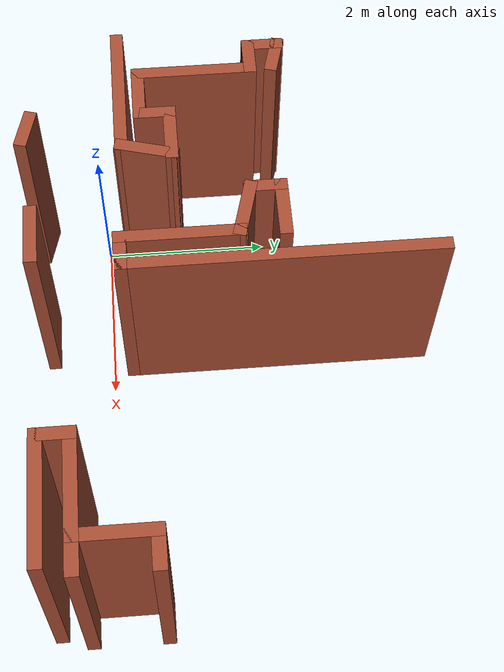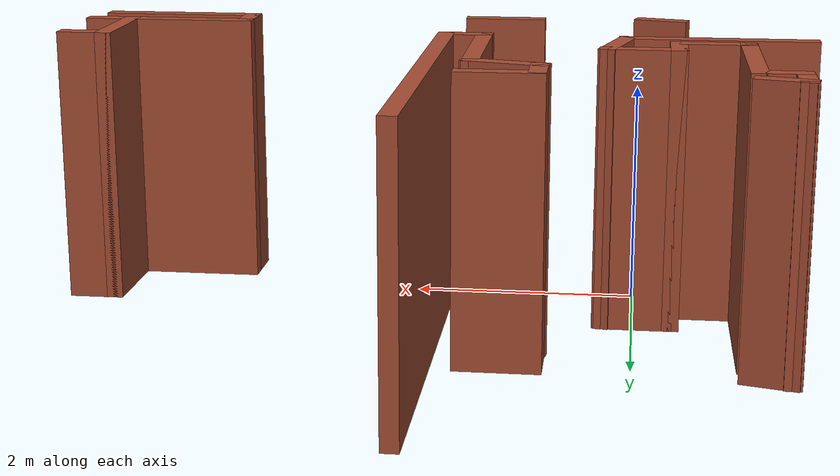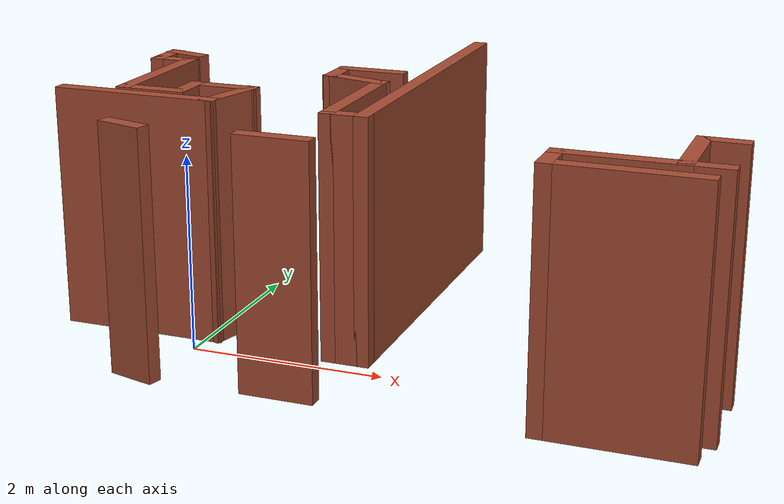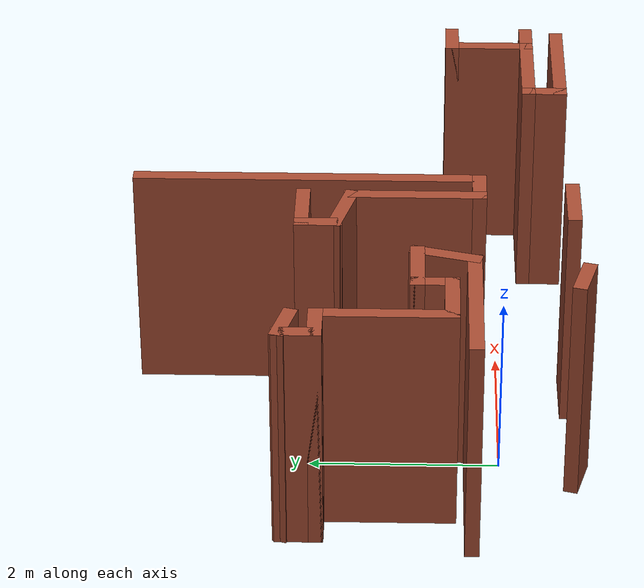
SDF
<sdf version="1.6">
 <model name="map_77">
  <link name="Wall_105">
   <pose>-1.12168 2.18834 0 0 -0 2.87979</pose>
   <visual name="Wall_105_Visual">
    <pose>0 0 1.25 0 -0 0</pose>
    <geometry><box><size>0.5 0.15 2.5</size></box></geometry>
    <material>
     <script><uri>file://media/materials/scripts/gazebo.material</uri><name>Gazebo/Bricks</name></script>
     <ambient>1 1 1 1</ambient>
     <shader type="pixel"/>
    </material>
    <meta><layer>0</layer></meta>
   </visual>
   <collision name="Wall_105_Collision">
    <pose>0 0 1.25 0 -0 0</pose>
    <geometry><box><size>0.5 0.15 2.5</size></box></geometry>
    <surface>
     <friction>
      <ode><mu>1</mu><mu2>1</mu2><fdir1>0 0 0</fdir1><slip1>0</slip1><slip2>0</slip2></ode>
      <torsional>
       <coefficient>1</coefficient>
       <patch_radius>0</patch_radius>
       <surface_radius>0</surface_radius>
       <use_patch_radius>1</use_patch_radius>
       <ode><slip>0</slip></ode>
      </torsional>
     </friction>
     <bounce><restitution_coefficient>0</restitution_coefficient><threshold>1e+06</threshold></bounce>
     <contact>
      <collide_without_contact>0</collide_without_contact>
      <collide_without_contact_bitmask>1</collide_without_contact_bitmask>
      <collide_bitmask>1</collide_bitmask>
      <ode>
       <soft_cfm>0</soft_cfm>
       <soft_erp>0.2</soft_erp>
       <kp>1e+13</kp>
       <kd>1</kd>
       <max_vel>0.01</max_vel>
       <min_depth>0</min_depth>
      </ode>
      <bullet>
       <split_impulse>1</split_impulse>
       <split_impulse_penetration_threshold>-0.01</split_impulse_penetration_threshold>
       <soft_cfm>0</soft_cfm>
       <soft_erp>0.2</soft_erp>
       <kp>1e+13</kp>
       <kd>1</kd>
      </bullet>
     </contact>
    </surface>
   </collision>
  </link>
  <link name="Wall_106">
   <pose>-1.29072 2.05864 0 0 0 -1.5708</pose>
   <visual name="Wall_106_Visual">
    <pose>0 0 1.25 0 -0 0</pose>
    <geometry><box><size>0.5 0.15 2.5</size></box></geometry>
    <material>
     <script><uri>file://media/materials/scripts/gazebo.material</uri><name>Gazebo/Bricks</name></script>
     <ambient>1 1 1 1</ambient>
     <shader type="pixel"/>
    </material>
    <meta><layer>0</layer></meta>
   </visual>
   <collision name="Wall_106_Collision">
    <pose>0 0 1.25 0 -0 0</pose>
    <geometry><box><size>0.5 0.15 2.5</size></box></geometry>
    <surface>
     <friction>
      <ode><mu>1</mu><mu2>1</mu2><fdir1>0 0 0</fdir1><slip1>0</slip1><slip2>0</slip2></ode>
      <torsional>
       <coefficient>1</coefficient>
       <patch_radius>0</patch_radius>
       <surface_radius>0</surface_radius>
       <use_patch_radius>1</use_patch_radius>
       <ode><slip>0</slip></ode>
      </torsional>
     </friction>
     <bounce><restitution_coefficient>0</restitution_coefficient><threshold>1e+06</threshold></bounce>
     <contact>
      <collide_without_contact>0</collide_without_contact>
      <collide_without_contact_bitmask>1</collide_without_contact_bitmask>
      <collide_bitmask>1</collide_bitmask>
      <ode>
       <soft_cfm>0</soft_cfm>
       <soft_erp>0.2</soft_erp>
       <kp>1e+13</kp>
       <kd>1</kd>
       <max_vel>0.01</max_vel>
       <min_depth>0</min_depth>
      </ode>
      <bullet>
       <split_impulse>1</split_impulse>
       <split_impulse_penetration_threshold>-0.01</split_impulse_penetration_threshold>
       <soft_cfm>0</soft_cfm>
       <soft_erp>0.2</soft_erp>
       <kp>1e+13</kp>
       <kd>1</kd>
      </bullet>
     </contact>
    </surface>
   </collision>
  </link>
  <link name="Wall_107">
   <pose>-1.11572 1.88364 0 0 -0 0</pose>
   <visual name="Wall_107_Visual">
    <pose>0 0 1.25 0 -0 0</pose>
    <geometry><box><size>0.5 0.15 2.5</size></box></geometry>
    <material>
     <script><uri>file://media/materials/scripts/gazebo.material</uri><name>Gazebo/Bricks</name></script>
     <ambient>1 1 1 1</ambient>
     <shader type="pixel"/>
    </material>
    <meta><layer>0</layer></meta>
   </visual>
   <collision name="Wall_107_Collision">
    <pose>0 0 1.25 0 -0 0</pose>
    <geometry><box><size>0.5 0.15 2.5</size></box></geometry>
    <surface>
     <friction>
      <ode><mu>1</mu><mu2>1</mu2><fdir1>0 0 0</fdir1><slip1>0</slip1><slip2>0</slip2></ode>
      <torsional>
       <coefficient>1</coefficient>
       <patch_radius>0</patch_radius>
       <surface_radius>0</surface_radius>
       <use_patch_radius>1</use_patch_radius>
       <ode><slip>0</slip></ode>
      </torsional>
     </friction>
     <bounce><restitution_coefficient>0</restitution_coefficient><threshold>1e+06</threshold></bounce>
     <contact>
      <collide_without_contact>0</collide_without_contact>
      <collide_without_contact_bitmask>1</collide_without_contact_bitmask>
      <collide_bitmask>1</collide_bitmask>
      <ode>
       <soft_cfm>0</soft_cfm>
       <soft_erp>0.2</soft_erp>
       <kp>1e+13</kp>
       <kd>1</kd>
       <max_vel>0.01</max_vel>
       <min_depth>0</min_depth>
      </ode>
      <bullet>
       <split_impulse>1</split_impulse>
       <split_impulse_penetration_threshold>-0.01</split_impulse_penetration_threshold>
       <soft_cfm>0</soft_cfm>
       <soft_erp>0.2</soft_erp>
       <kp>1e+13</kp>
       <kd>1</kd>
      </bullet>
     </contact>
    </surface>
   </collision>
  </link>
  <link name="Wall_108">
   <pose>-0.940718 1.20864 0 0 0 -1.5708</pose>
   <visual name="Wall_108_Visual">
    <pose>0 0 1.25 0 -0 0</pose>
    <geometry><box><size>1.5 0.15 2.5</size></box></geometry>
    <material>
     <script><uri>file://media/materials/scripts/gazebo.material</uri><name>Gazebo/Bricks</name></script>
     <ambient>1 1 1 1</ambient>
     <shader type="pixel"/>
    </material>
    <meta><layer>0</layer></meta>
   </visual>
   <collision name="Wall_108_Collision">
    <pose>0 0 1.25 0 -0 0</pose>
    <geometry><box><size>1.5 0.15 2.5</size></box></geometry>
    <surface>
     <friction>
      <ode><mu>1</mu><mu2>1</mu2><fdir1>0 0 0</fdir1><slip1>0</slip1><slip2>0</slip2></ode>
      <torsional>
       <coefficient>1</coefficient>
       <patch_radius>0</patch_radius>
       <surface_radius>0</surface_radius>
       <use_patch_radius>1</use_patch_radius>
       <ode><slip>0</slip></ode>
      </torsional>
     </friction>
     <bounce><restitution_coefficient>0</restitution_coefficient><threshold>1e+06</threshold></bounce>
     <contact>
      <collide_without_contact>0</collide_without_contact>
      <collide_without_contact_bitmask>1</collide_without_contact_bitmask>
      <collide_bitmask>1</collide_bitmask>
      <ode>
       <soft_cfm>0</soft_cfm>
       <soft_erp>0.2</soft_erp>
       <kp>1e+13</kp>
       <kd>1</kd>
       <max_vel>0.01</max_vel>
       <min_depth>0</min_depth>
      </ode>
      <bullet>
       <split_impulse>1</split_impulse>
       <split_impulse_penetration_threshold>-0.01</split_impulse_penetration_threshold>
       <soft_cfm>0</soft_cfm>
       <soft_erp>0.2</soft_erp>
       <kp>1e+13</kp>
       <kd>1</kd>
      </bullet>
     </contact>
    </surface>
   </collision>
  </link>
  <link name="Wall_109">
   <pose>-0.640718 0.533638 0 0 -0 0</pose>
   <visual name="Wall_109_Visual">
    <pose>0 0 1.25 0 -0 0</pose>
    <geometry><box><size>0.75 0.15 2.5</size></box></geometry>
    <material>
     <script><uri>file://media/materials/scripts/gazebo.material</uri><name>Gazebo/Bricks</name></script>
     <ambient>1 1 1 1</ambient>
     <shader type="pixel"/>
    </material>
    <meta><layer>0</layer></meta>
   </visual>
   <collision name="Wall_109_Collision">
    <pose>0 0 1.25 0 -0 0</pose>
    <geometry><box><size>0.75 0.15 2.5</size></box></geometry>
    <surface>
     <friction>
      <ode><mu>1</mu><mu2>1</mu2><fdir1>0 0 0</fdir1><slip1>0</slip1><slip2>0</slip2></ode>
      <torsional>
       <coefficient>1</coefficient>
       <patch_radius>0</patch_radius>
       <surface_radius>0</surface_radius>
       <use_patch_radius>1</use_patch_radius>
       <ode><slip>0</slip></ode>
      </torsional>
     </friction>
     <bounce><restitution_coefficient>0</restitution_coefficient><threshold>1e+06</threshold></bounce>
     <contact>
      <collide_without_contact>0</collide_without_contact>
      <collide_without_contact_bitmask>1</collide_without_contact_bitmask>
      <collide_bitmask>1</collide_bitmask>
      <ode>
       <soft_cfm>0</soft_cfm>
       <soft_erp>0.2</soft_erp>
       <kp>1e+13</kp>
       <kd>1</kd>
       <max_vel>0.01</max_vel>
       <min_depth>0</min_depth>
      </ode>
      <bullet>
       <split_impulse>1</split_impulse>
       <split_impulse_penetration_threshold>-0.01</split_impulse_penetration_threshold>
       <soft_cfm>0</soft_cfm>
       <soft_erp>0.2</soft_erp>
       <kp>1e+13</kp>
       <kd>1</kd>
      </bullet>
     </contact>
    </surface>
   </collision>
  </link>
  <link name="Wall_110">
   <pose>-0.340718 0.708638 0 0 -0 1.5708</pose>
   <visual name="Wall_110_Visual">
    <pose>0 0 1.25 0 -0 0</pose>
    <geometry><box><size>0.5 0.15 2.5</size></box></geometry>
    <material>
     <script><uri>file://media/materials/scripts/gazebo.material</uri><name>Gazebo/Bricks</name></script>
     <ambient>1 1 1 1</ambient>
     <shader type="pixel"/>
    </material>
    <meta><layer>0</layer></meta>
   </visual>
   <collision name="Wall_110_Collision">
    <pose>0 0 1.25 0 -0 0</pose>
    <geometry><box><size>0.5 0.15 2.5</size></box></geometry>
    <surface>
     <friction>
      <ode><mu>1</mu><mu2>1</mu2><fdir1>0 0 0</fdir1><slip1>0</slip1><slip2>0</slip2></ode>
      <torsional>
       <coefficient>1</coefficient>
       <patch_radius>0</patch_radius>
       <surface_radius>0</surface_radius>
       <use_patch_radius>1</use_patch_radius>
       <ode><slip>0</slip></ode>
      </torsional>
     </friction>
     <bounce><restitution_coefficient>0</restitution_coefficient><threshold>1e+06</threshold></bounce>
     <contact>
      <collide_without_contact>0</collide_without_contact>
      <collide_without_contact_bitmask>1</collide_without_contact_bitmask>
      <collide_bitmask>1</collide_bitmask>
      <ode>
       <soft_cfm>0</soft_cfm>
       <soft_erp>0.2</soft_erp>
       <kp>1e+13</kp>
       <kd>1</kd>
       <max_vel>0.01</max_vel>
       <min_depth>0</min_depth>
      </ode>
      <bullet>
       <split_impulse>1</split_impulse>
       <split_impulse_penetration_threshold>-0.01</split_impulse_penetration_threshold>
       <soft_cfm>0</soft_cfm>
       <soft_erp>0.2</soft_erp>
       <kp>1e+13</kp>
       <kd>1</kd>
      </bullet>
     </contact>
    </surface>
   </collision>
  </link>
  <link name="Wall_111">
   <pose>-0.040718 0.883638 0 0 -0 0</pose>
   <visual name="Wall_111_Visual">
    <pose>0 0 1.25 0 -0 0</pose>
    <geometry><box><size>0.75 0.15 2.5</size></box></geometry>
    <material>
     <script><uri>file://media/materials/scripts/gazebo.material</uri><name>Gazebo/Bricks</name></script>
     <ambient>1 1 1 1</ambient>
     <shader type="pixel"/>
    </material>
    <meta><layer>0</layer></meta>
   </visual>
   <collision name="Wall_111_Collision">
    <pose>0 0 1.25 0 -0 0</pose>
    <geometry><box><size>0.75 0.15 2.5</size></box></geometry>
    <surface>
     <friction>
      <ode><mu>1</mu><mu2>1</mu2><fdir1>0 0 0</fdir1><slip1>0</slip1><slip2>0</slip2></ode>
      <torsional>
       <coefficient>1</coefficient>
       <patch_radius>0</patch_radius>
       <surface_radius>0</surface_radius>
       <use_patch_radius>1</use_patch_radius>
       <ode><slip>0</slip></ode>
      </torsional>
     </friction>
     <bounce><restitution_coefficient>0</restitution_coefficient><threshold>1e+06</threshold></bounce>
     <contact>
      <collide_without_contact>0</collide_without_contact>
      <collide_without_contact_bitmask>1</collide_without_contact_bitmask>
      <collide_bitmask>1</collide_bitmask>
      <ode>
       <soft_cfm>0</soft_cfm>
       <soft_erp>0.2</soft_erp>
       <kp>1e+13</kp>
       <kd>1</kd>
       <max_vel>0.01</max_vel>
       <min_depth>0</min_depth>
      </ode>
      <bullet>
       <split_impulse>1</split_impulse>
       <split_impulse_penetration_threshold>-0.01</split_impulse_penetration_threshold>
       <soft_cfm>0</soft_cfm>
       <soft_erp>0.2</soft_erp>
       <kp>1e+13</kp>
       <kd>1</kd>
      </bullet>
     </contact>
    </surface>
   </collision>
  </link>
  <link name="Wall_112">
   <pose>0.181636 0.593861 0 0 0 -1.8326</pose>
   <visual name="Wall_112_Visual">
    <pose>0 0 1.25 0 -0 0</pose>
    <geometry><box><size>0.75 0.15 2.5</size></box></geometry>
    <material>
     <script><uri>file://media/materials/scripts/gazebo.material</uri><name>Gazebo/Bricks</name></script>
     <ambient>1 1 1 1</ambient>
     <shader type="pixel"/>
    </material>
    <meta><layer>0</layer></meta>
   </visual>
   <collision name="Wall_112_Collision">
    <pose>0 0 1.25 0 -0 0</pose>
    <geometry><box><size>0.75 0.15 2.5</size></box></geometry>
    <surface>
     <friction>
      <ode><mu>1</mu><mu2>1</mu2><fdir1>0 0 0</fdir1><slip1>0</slip1><slip2>0</slip2></ode>
      <torsional>
       <coefficient>1</coefficient>
       <patch_radius>0</patch_radius>
       <surface_radius>0</surface_radius>
       <use_patch_radius>1</use_patch_radius>
       <ode><slip>0</slip></ode>
      </torsional>
     </friction>
     <bounce><restitution_coefficient>0</restitution_coefficient><threshold>1e+06</threshold></bounce>
     <contact>
      <collide_without_contact>0</collide_without_contact>
      <collide_without_contact_bitmask>1</collide_without_contact_bitmask>
      <collide_bitmask>1</collide_bitmask>
      <ode>
       <soft_cfm>0</soft_cfm>
       <soft_erp>0.2</soft_erp>
       <kp>1e+13</kp>
       <kd>1</kd>
       <max_vel>0.01</max_vel>
       <min_depth>0</min_depth>
      </ode>
      <bullet>
       <split_impulse>1</split_impulse>
       <split_impulse_penetration_threshold>-0.01</split_impulse_penetration_threshold>
       <soft_cfm>0</soft_cfm>
       <soft_erp>0.2</soft_erp>
       <kp>1e+13</kp>
       <kd>1</kd>
      </bullet>
     </contact>
    </surface>
   </collision>
  </link>
  <link name="Wall_113">
   <pose>-0.696009 0.304083 0 0 -0 3.14159</pose>
   <visual name="Wall_113_Visual">
    <pose>0 0 1.25 0 -0 0</pose>
    <geometry><box><size>1.75 0.15 2.5</size></box></geometry>
    <material>
     <script><uri>file://media/materials/scripts/gazebo.material</uri><name>Gazebo/Bricks</name></script>
     <ambient>1 1 1 1</ambient>
     <shader type="pixel"/>
    </material>
    <meta><layer>0</layer></meta>
   </visual>
   <collision name="Wall_113_Collision">
    <pose>0 0 1.25 0 -0 0</pose>
    <geometry><box><size>1.75 0.15 2.5</size></box></geometry>
    <surface>
     <friction>
      <ode><mu>1</mu><mu2>1</mu2><fdir1>0 0 0</fdir1><slip1>0</slip1><slip2>0</slip2></ode>
      <torsional>
       <coefficient>1</coefficient>
       <patch_radius>0</patch_radius>
       <surface_radius>0</surface_radius>
       <use_patch_radius>1</use_patch_radius>
       <ode><slip>0</slip></ode>
      </torsional>
     </friction>
     <bounce><restitution_coefficient>0</restitution_coefficient><threshold>1e+06</threshold></bounce>
     <contact>
      <collide_without_contact>0</collide_without_contact>
      <collide_without_contact_bitmask>1</collide_without_contact_bitmask>
      <collide_bitmask>1</collide_bitmask>
      <ode>
       <soft_cfm>0</soft_cfm>
       <soft_erp>0.2</soft_erp>
       <kp>1e+13</kp>
       <kd>1</kd>
       <max_vel>0.01</max_vel>
       <min_depth>0</min_depth>
      </ode>
      <bullet>
       <split_impulse>1</split_impulse>
       <split_impulse_penetration_threshold>-0.01</split_impulse_penetration_threshold>
       <soft_cfm>0</soft_cfm>
       <soft_erp>0.2</soft_erp>
       <kp>1e+13</kp>
       <kd>1</kd>
      </bullet>
     </contact>
    </surface>
   </collision>
  </link>
  <link name="Wall_130">
   <pose>4.25883 -0.34269 0 0 -0 3.14159</pose>
   <visual name="Wall_130_Visual">
    <pose>0 0 1.25 0 -0 0</pose>
    <geometry><box><size>1.25 0.15 2.5</size></box></geometry>
    <material>
     <script><uri>file://media/materials/scripts/gazebo.material</uri><name>Gazebo/Bricks</name></script>
     <ambient>1 1 1 1</ambient>
     <shader type="pixel"/>
    </material>
    <meta><layer>0</layer></meta>
   </visual>
   <collision name="Wall_130_Collision">
    <pose>0 0 1.25 0 -0 0</pose>
    <geometry><box><size>1.25 0.15 2.5</size></box></geometry>
    <surface>
     <friction>
      <ode><mu>1</mu><mu2>1</mu2><fdir1>0 0 0</fdir1><slip1>0</slip1><slip2>0</slip2></ode>
      <torsional>
       <coefficient>1</coefficient>
       <patch_radius>0</patch_radius>
       <surface_radius>0</surface_radius>
       <use_patch_radius>1</use_patch_radius>
       <ode><slip>0</slip></ode>
      </torsional>
     </friction>
     <bounce><restitution_coefficient>0</restitution_coefficient><threshold>1e+06</threshold></bounce>
     <contact>
      <collide_without_contact>0</collide_without_contact>
      <collide_without_contact_bitmask>1</collide_without_contact_bitmask>
      <collide_bitmask>1</collide_bitmask>
      <ode>
       <soft_cfm>0</soft_cfm>
       <soft_erp>0.2</soft_erp>
       <kp>1e+13</kp>
       <kd>1</kd>
       <max_vel>0.01</max_vel>
       <min_depth>0</min_depth>
      </ode>
      <bullet>
       <split_impulse>1</split_impulse>
       <split_impulse_penetration_threshold>-0.01</split_impulse_penetration_threshold>
       <soft_cfm>0</soft_cfm>
       <soft_erp>0.2</soft_erp>
       <kp>1e+13</kp>
       <kd>1</kd>
      </bullet>
     </contact>
    </surface>
   </collision>
  </link>
  <link name="Wall_131">
   <pose>3.70883 -0.51769 0 0 0 -1.5708</pose>
   <visual name="Wall_131_Visual">
    <pose>0 0 1.25 0 -0 0</pose>
    <geometry><box><size>0.5 0.15 2.5</size></box></geometry>
    <material>
     <script><uri>file://media/materials/scripts/gazebo.material</uri><name>Gazebo/Bricks</name></script>
     <ambient>1 1 1 1</ambient>
     <shader type="pixel"/>
    </material>
    <meta><layer>0</layer></meta>
   </visual>
   <collision name="Wall_131_Collision">
    <pose>0 0 1.25 0 -0 0</pose>
    <geometry><box><size>0.5 0.15 2.5</size></box></geometry>
    <surface>
     <friction>
      <ode><mu>1</mu><mu2>1</mu2><fdir1>0 0 0</fdir1><slip1>0</slip1><slip2>0</slip2></ode>
      <torsional>
       <coefficient>1</coefficient>
       <patch_radius>0</patch_radius>
       <surface_radius>0</surface_radius>
       <use_patch_radius>1</use_patch_radius>
       <ode><slip>0</slip></ode>
      </torsional>
     </friction>
     <bounce><restitution_coefficient>0</restitution_coefficient><threshold>1e+06</threshold></bounce>
     <contact>
      <collide_without_contact>0</collide_without_contact>
      <collide_without_contact_bitmask>1</collide_without_contact_bitmask>
      <collide_bitmask>1</collide_bitmask>
      <ode>
       <soft_cfm>0</soft_cfm>
       <soft_erp>0.2</soft_erp>
       <kp>1e+13</kp>
       <kd>1</kd>
       <max_vel>0.01</max_vel>
       <min_depth>0</min_depth>
      </ode>
      <bullet>
       <split_impulse>1</split_impulse>
       <split_impulse_penetration_threshold>-0.01</split_impulse_penetration_threshold>
       <soft_cfm>0</soft_cfm>
       <soft_erp>0.2</soft_erp>
       <kp>1e+13</kp>
       <kd>1</kd>
      </bullet>
     </contact>
    </surface>
   </collision>
  </link>
  <link name="Wall_132">
   <pose>4.38383 -0.69269 0 0 -0 0</pose>
   <visual name="Wall_132_Visual">
    <pose>0 0 1.25 0 -0 0</pose>
    <geometry><box><size>1.5 0.15 2.5</size></box></geometry>
    <material>
     <script><uri>file://media/materials/scripts/gazebo.material</uri><name>Gazebo/Bricks</name></script>
     <ambient>1 1 1 1</ambient>
     <shader type="pixel"/>
    </material>
    <meta><layer>0</layer></meta>
   </visual>
   <collision name="Wall_132_Collision">
    <pose>0 0 1.25 0 -0 0</pose>
    <geometry><box><size>1.5 0.15 2.5</size></box></geometry>
    <surface>
     <friction>
      <ode><mu>1</mu><mu2>1</mu2><fdir1>0 0 0</fdir1><slip1>0</slip1><slip2>0</slip2></ode>
      <torsional>
       <coefficient>1</coefficient>
       <patch_radius>0</patch_radius>
       <surface_radius>0</surface_radius>
       <use_patch_radius>1</use_patch_radius>
       <ode><slip>0</slip></ode>
      </torsional>
     </friction>
     <bounce><restitution_coefficient>0</restitution_coefficient><threshold>1e+06</threshold></bounce>
     <contact>
      <collide_without_contact>0</collide_without_contact>
      <collide_without_contact_bitmask>1</collide_without_contact_bitmask>
      <collide_bitmask>1</collide_bitmask>
      <ode>
       <soft_cfm>0</soft_cfm>
       <soft_erp>0.2</soft_erp>
       <kp>1e+13</kp>
       <kd>1</kd>
       <max_vel>0.01</max_vel>
       <min_depth>0</min_depth>
      </ode>
      <bullet>
       <split_impulse>1</split_impulse>
       <split_impulse_penetration_threshold>-0.01</split_impulse_penetration_threshold>
       <soft_cfm>0</soft_cfm>
       <soft_erp>0.2</soft_erp>
       <kp>1e+13</kp>
       <kd>1</kd>
      </bullet>
     </contact>
    </surface>
   </collision>
  </link>
  <link name="Wall_41">
   <pose>-0.210203 -0.797397 0 0 0 -0.261799</pose>
   <visual name="Wall_41_Visual">
    <pose>0 0 1.25 0 -0 0</pose>
    <geometry><box><size>0.5 0.15 2.5</size></box></geometry>
    <material>
     <script><uri>file://media/materials/scripts/gazebo.material</uri><name>Gazebo/Bricks</name></script>
     <ambient>1 1 1 1</ambient>
     <shader type="pixel"/>
    </material>
    <meta><layer>0</layer></meta>
   </visual>
   <collision name="Wall_41_Collision">
    <pose>0 0 1.25 0 -0 0</pose>
    <geometry><box><size>0.5 0.15 2.5</size></box></geometry>
    <surface>
     <friction>
      <ode><mu>1</mu><mu2>1</mu2><fdir1>0 0 0</fdir1><slip1>0</slip1><slip2>0</slip2></ode>
      <torsional>
       <coefficient>1</coefficient>
       <patch_radius>0</patch_radius>
       <surface_radius>0</surface_radius>
       <use_patch_radius>1</use_patch_radius>
       <ode><slip>0</slip></ode>
      </torsional>
     </friction>
     <bounce><restitution_coefficient>0</restitution_coefficient><threshold>1e+06</threshold></bounce>
     <contact>
      <collide_without_contact>0</collide_without_contact>
      <collide_without_contact_bitmask>1</collide_without_contact_bitmask>
      <collide_bitmask>1</collide_bitmask>
      <ode>
       <soft_cfm>0</soft_cfm>
       <soft_erp>0.2</soft_erp>
       <kp>1e+13</kp>
       <kd>1</kd>
       <max_vel>0.01</max_vel>
       <min_depth>0</min_depth>
      </ode>
      <bullet>
       <split_impulse>1</split_impulse>
       <split_impulse_penetration_threshold>-0.01</split_impulse_penetration_threshold>
       <soft_cfm>0</soft_cfm>
       <soft_erp>0.2</soft_erp>
       <kp>1e+13</kp>
       <kd>1</kd>
      </bullet>
     </contact>
    </surface>
   </collision>
  </link>
  <link name="Wall_49">
   <pose>1.25883 -0.74269 0 0 -0 0</pose>
   <visual name="Wall_49_Visual">
    <pose>0 0 1.25 0 -0 0</pose>
    <geometry><box><size>0.75 0.15 2.5</size></box></geometry>
    <material>
     <script><uri>file://media/materials/scripts/gazebo.material</uri><name>Gazebo/Bricks</name></script>
     <ambient>1 1 1 1</ambient>
     <shader type="pixel"/>
    </material>
    <meta><layer>0</layer></meta>
   </visual>
   <collision name="Wall_49_Collision">
    <pose>0 0 1.25 0 -0 0</pose>
    <geometry><box><size>0.75 0.15 2.5</size></box></geometry>
    <surface>
     <friction>
      <ode><mu>1</mu><mu2>1</mu2><fdir1>0 0 0</fdir1><slip1>0</slip1><slip2>0</slip2></ode>
      <torsional>
       <coefficient>1</coefficient>
       <patch_radius>0</patch_radius>
       <surface_radius>0</surface_radius>
       <use_patch_radius>1</use_patch_radius>
       <ode><slip>0</slip></ode>
      </torsional>
     </friction>
     <bounce><restitution_coefficient>0</restitution_coefficient><threshold>1e+06</threshold></bounce>
     <contact>
      <collide_without_contact>0</collide_without_contact>
      <collide_without_contact_bitmask>1</collide_without_contact_bitmask>
      <collide_bitmask>1</collide_bitmask>
      <ode>
       <soft_cfm>0</soft_cfm>
       <soft_erp>0.2</soft_erp>
       <kp>1e+13</kp>
       <kd>1</kd>
       <max_vel>0.01</max_vel>
       <min_depth>0</min_depth>
      </ode>
      <bullet>
       <split_impulse>1</split_impulse>
       <split_impulse_penetration_threshold>-0.01</split_impulse_penetration_threshold>
       <soft_cfm>0</soft_cfm>
       <soft_erp>0.2</soft_erp>
       <kp>1e+13</kp>
       <kd>1</kd>
      </bullet>
     </contact>
    </surface>
   </collision>
  </link>
  <link name="Wall_71">
   <pose>4.98383 -0.34269 0 0 -0 3.14159</pose>
   <visual name="Wall_71_Visual">
    <pose>0 0 1.25 0 -0 0</pose>
    <geometry><box><size>0.5 0.15 2.5</size></box></geometry>
    <material>
     <script><uri>file://media/materials/scripts/gazebo.material</uri><name>Gazebo/Bricks</name></script>
     <ambient>1 1 1 1</ambient>
     <shader type="pixel"/>
    </material>
    <meta><layer>0</layer></meta>
   </visual>
   <collision name="Wall_71_Collision">
    <pose>0 0 1.25 0 -0 0</pose>
    <geometry><box><size>0.5 0.15 2.5</size></box></geometry>
    <surface>
     <friction>
      <ode><mu>1</mu><mu2>1</mu2><fdir1>0 0 0</fdir1><slip1>0</slip1><slip2>0</slip2></ode>
      <torsional>
       <coefficient>1</coefficient>
       <patch_radius>0</patch_radius>
       <surface_radius>0</surface_radius>
       <use_patch_radius>1</use_patch_radius>
       <ode><slip>0</slip></ode>
      </torsional>
     </friction>
     <bounce><restitution_coefficient>0</restitution_coefficient><threshold>1e+06</threshold></bounce>
     <contact>
      <collide_without_contact>0</collide_without_contact>
      <collide_without_contact_bitmask>1</collide_without_contact_bitmask>
      <collide_bitmask>1</collide_bitmask>
      <ode>
       <soft_cfm>0</soft_cfm>
       <soft_erp>0.2</soft_erp>
       <kp>1e+13</kp>
       <kd>1</kd>
       <max_vel>0.01</max_vel>
       <min_depth>0</min_depth>
      </ode>
      <bullet>
       <split_impulse>1</split_impulse>
       <split_impulse_penetration_threshold>-0.01</split_impulse_penetration_threshold>
       <soft_cfm>0</soft_cfm>
       <soft_erp>0.2</soft_erp>
       <kp>1e+13</kp>
       <kd>1</kd>
      </bullet>
     </contact>
    </surface>
   </collision>
  </link>
  <link name="Wall_72">
   <pose>4.80883 0.08231 0 0 -0 1.5708</pose>
   <visual name="Wall_72_Visual">
    <pose>0 0 1.25 0 -0 0</pose>
    <geometry><box><size>1 0.15 2.5</size></box></geometry>
    <material>
     <script><uri>file://media/materials/scripts/gazebo.material</uri><name>Gazebo/Bricks</name></script>
     <ambient>1 1 1 1</ambient>
     <shader type="pixel"/>
    </material>
    <meta><layer>0</layer></meta>
   </visual>
   <collision name="Wall_72_Collision">
    <pose>0 0 1.25 0 -0 0</pose>
    <geometry><box><size>1 0.15 2.5</size></box></geometry>
    <surface>
     <friction>
      <ode><mu>1</mu><mu2>1</mu2><fdir1>0 0 0</fdir1><slip1>0</slip1><slip2>0</slip2></ode>
      <torsional>
       <coefficient>1</coefficient>
       <patch_radius>0</patch_radius>
       <surface_radius>0</surface_radius>
       <use_patch_radius>1</use_patch_radius>
       <ode><slip>0</slip></ode>
      </torsional>
     </friction>
     <bounce><restitution_coefficient>0</restitution_coefficient><threshold>1e+06</threshold></bounce>
     <contact>
      <collide_without_contact>0</collide_without_contact>
      <collide_without_contact_bitmask>1</collide_without_contact_bitmask>
      <collide_bitmask>1</collide_bitmask>
      <ode>
       <soft_cfm>0</soft_cfm>
       <soft_erp>0.2</soft_erp>
       <kp>1e+13</kp>
       <kd>1</kd>
       <max_vel>0.01</max_vel>
       <min_depth>0</min_depth>
      </ode>
      <bullet>
       <split_impulse>1</split_impulse>
       <split_impulse_penetration_threshold>-0.01</split_impulse_penetration_threshold>
       <soft_cfm>0</soft_cfm>
       <soft_erp>0.2</soft_erp>
       <kp>1e+13</kp>
       <kd>1</kd>
      </bullet>
     </contact>
    </surface>
   </collision>
  </link>
  <link name="Wall_73">
   <pose>4.98383 0.50731 0 0 -0 0</pose>
   <visual name="Wall_73_Visual">
    <pose>0 0 1.25 0 -0 0</pose>
    <geometry><box><size>0.5 0.15 2.5</size></box></geometry>
    <material>
     <script><uri>file://media/materials/scripts/gazebo.material</uri><name>Gazebo/Bricks</name></script>
     <ambient>1 1 1 1</ambient>
     <shader type="pixel"/>
    </material>
    <meta><layer>0</layer></meta>
   </visual>
   <collision name="Wall_73_Collision">
    <pose>0 0 1.25 0 -0 0</pose>
    <geometry><box><size>0.5 0.15 2.5</size></box></geometry>
    <surface>
     <friction>
      <ode><mu>1</mu><mu2>1</mu2><fdir1>0 0 0</fdir1><slip1>0</slip1><slip2>0</slip2></ode>
      <torsional>
       <coefficient>1</coefficient>
       <patch_radius>0</patch_radius>
       <surface_radius>0</surface_radius>
       <use_patch_radius>1</use_patch_radius>
       <ode><slip>0</slip></ode>
      </torsional>
     </friction>
     <bounce><restitution_coefficient>0</restitution_coefficient><threshold>1e+06</threshold></bounce>
     <contact>
      <collide_without_contact>0</collide_without_contact>
      <collide_without_contact_bitmask>1</collide_without_contact_bitmask>
      <collide_bitmask>1</collide_bitmask>
      <ode>
       <soft_cfm>0</soft_cfm>
       <soft_erp>0.2</soft_erp>
       <kp>1e+13</kp>
       <kd>1</kd>
       <max_vel>0.01</max_vel>
       <min_depth>0</min_depth>
      </ode>
      <bullet>
       <split_impulse>1</split_impulse>
       <split_impulse_penetration_threshold>-0.01</split_impulse_penetration_threshold>
       <soft_cfm>0</soft_cfm>
       <soft_erp>0.2</soft_erp>
       <kp>1e+13</kp>
       <kd>1</kd>
      </bullet>
     </contact>
    </surface>
   </collision>
  </link>
  <link name="Wall_92">
   <pose>1.72691 2.03776 0 0 0 -1.5708</pose>
   <visual name="Wall_92_Visual">
    <pose>0 0 1.25 0 -0 0</pose>
    <geometry><box><size>3.75 0.15 2.5</size></box></geometry>
    <material>
     <script><uri>file://media/materials/scripts/gazebo.material</uri><name>Gazebo/Bricks</name></script>
     <ambient>1 1 1 1</ambient>
     <shader type="pixel"/>
    </material>
    <meta><layer>0</layer></meta>
   </visual>
   <collision name="Wall_92_Collision">
    <pose>0 0 1.25 0 -0 0</pose>
    <geometry><box><size>3.75 0.15 2.5</size></box></geometry>
    <surface>
     <friction>
      <ode><mu>1</mu><mu2>1</mu2><fdir1>0 0 0</fdir1><slip1>0</slip1><slip2>0</slip2></ode>
      <torsional>
       <coefficient>1</coefficient>
       <patch_radius>0</patch_radius>
       <surface_radius>0</surface_radius>
       <use_patch_radius>1</use_patch_radius>
       <ode><slip>0</slip></ode>
      </torsional>
     </friction>
     <bounce><restitution_coefficient>0</restitution_coefficient><threshold>1e+06</threshold></bounce>
     <contact>
      <collide_without_contact>0</collide_without_contact>
      <collide_without_contact_bitmask>1</collide_without_contact_bitmask>
      <collide_bitmask>1</collide_bitmask>
      <ode>
       <soft_cfm>0</soft_cfm>
       <soft_erp>0.2</soft_erp>
       <kp>1e+13</kp>
       <kd>1</kd>
       <max_vel>0.01</max_vel>
       <min_depth>0</min_depth>
      </ode>
      <bullet>
       <split_impulse>1</split_impulse>
       <split_impulse_penetration_threshold>-0.01</split_impulse_penetration_threshold>
       <soft_cfm>0</soft_cfm>
       <soft_erp>0.2</soft_erp>
       <kp>1e+13</kp>
       <kd>1</kd>
      </bullet>
     </contact>
    </surface>
   </collision>
  </link>
  <link name="Wall_93">
   <pose>1.55191 0.23776 0 0 -0 3.14159</pose>
   <visual name="Wall_93_Visual">
    <pose>0 0 1.25 0 -0 0</pose>
    <geometry><box><size>0.5 0.15 2.5</size></box></geometry>
    <material>
     <script><uri>file://media/materials/scripts/gazebo.material</uri><name>Gazebo/Bricks</name></script>
     <ambient>1 1 1 1</ambient>
     <shader type="pixel"/>
    </material>
    <meta><layer>0</layer></meta>
   </visual>
   <collision name="Wall_93_Collision">
    <pose>0 0 1.25 0 -0 0</pose>
    <geometry><box><size>0.5 0.15 2.5</size></box></geometry>
    <surface>
     <friction>
      <ode><mu>1</mu><mu2>1</mu2><fdir1>0 0 0</fdir1><slip1>0</slip1><slip2>0</slip2></ode>
      <torsional>
       <coefficient>1</coefficient>
       <patch_radius>0</patch_radius>
       <surface_radius>0</surface_radius>
       <use_patch_radius>1</use_patch_radius>
       <ode><slip>0</slip></ode>
      </torsional>
     </friction>
     <bounce><restitution_coefficient>0</restitution_coefficient><threshold>1e+06</threshold></bounce>
     <contact>
      <collide_without_contact>0</collide_without_contact>
      <collide_without_contact_bitmask>1</collide_without_contact_bitmask>
      <collide_bitmask>1</collide_bitmask>
      <ode>
       <soft_cfm>0</soft_cfm>
       <soft_erp>0.2</soft_erp>
       <kp>1e+13</kp>
       <kd>1</kd>
       <max_vel>0.01</max_vel>
       <min_depth>0</min_depth>
      </ode>
      <bullet>
       <split_impulse>1</split_impulse>
       <split_impulse_penetration_threshold>-0.01</split_impulse_penetration_threshold>
       <soft_cfm>0</soft_cfm>
       <soft_erp>0.2</soft_erp>
       <kp>1e+13</kp>
       <kd>1</kd>
      </bullet>
     </contact>
    </surface>
   </collision>
  </link>
  <link name="Wall_94">
   <pose>1.37691 0.91276 0 0 -0 1.5708</pose>
   <visual name="Wall_94_Visual">
    <pose>0 0 1.25 0 -0 0</pose>
    <geometry><box><size>1.5 0.15 2.5</size></box></geometry>
    <material>
     <script><uri>file://media/materials/scripts/gazebo.material</uri><name>Gazebo/Bricks</name></script>
     <ambient>1 1 1 1</ambient>
     <shader type="pixel"/>
    </material>
    <meta><layer>0</layer></meta>
   </visual>
   <collision name="Wall_94_Collision">
    <pose>0 0 1.25 0 -0 0</pose>
    <geometry><box><size>1.5 0.15 2.5</size></box></geometry>
    <surface>
     <friction>
      <ode><mu>1</mu><mu2>1</mu2><fdir1>0 0 0</fdir1><slip1>0</slip1><slip2>0</slip2></ode>
      <torsional>
       <coefficient>1</coefficient>
       <patch_radius>0</patch_radius>
       <surface_radius>0</surface_radius>
       <use_patch_radius>1</use_patch_radius>
       <ode><slip>0</slip></ode>
      </torsional>
     </friction>
     <bounce><restitution_coefficient>0</restitution_coefficient><threshold>1e+06</threshold></bounce>
     <contact>
      <collide_without_contact>0</collide_without_contact>
      <collide_without_contact_bitmask>1</collide_without_contact_bitmask>
      <collide_bitmask>1</collide_bitmask>
      <ode>
       <soft_cfm>0</soft_cfm>
       <soft_erp>0.2</soft_erp>
       <kp>1e+13</kp>
       <kd>1</kd>
       <max_vel>0.01</max_vel>
       <min_depth>0</min_depth>
      </ode>
      <bullet>
       <split_impulse>1</split_impulse>
       <split_impulse_penetration_threshold>-0.01</split_impulse_penetration_threshold>
       <soft_cfm>0</soft_cfm>
       <soft_erp>0.2</soft_erp>
       <kp>1e+13</kp>
       <kd>1</kd>
      </bullet>
     </contact>
    </surface>
   </collision>
  </link>
  <link name="Wall_95">
   <pose>1.08713 1.66541 0 0 -0 2.87979</pose>
   <visual name="Wall_95_Visual">
    <pose>0 0 1.25 0 -0 0</pose>
    <geometry><box><size>0.75 0.15 2.5</size></box></geometry>
    <material>
     <script><uri>file://media/materials/scripts/gazebo.material</uri><name>Gazebo/Bricks</name></script>
     <ambient>1 1 1 1</ambient>
     <shader type="pixel"/>
    </material>
    <meta><layer>0</layer></meta>
   </visual>
   <collision name="Wall_95_Collision">
    <pose>0 0 1.25 0 -0 0</pose>
    <geometry><box><size>0.75 0.15 2.5</size></box></geometry>
    <surface>
     <friction>
      <ode><mu>1</mu><mu2>1</mu2><fdir1>0 0 0</fdir1><slip1>0</slip1><slip2>0</slip2></ode>
      <torsional>
       <coefficient>1</coefficient>
       <patch_radius>0</patch_radius>
       <surface_radius>0</surface_radius>
       <use_patch_radius>1</use_patch_radius>
       <ode><slip>0</slip></ode>
      </torsional>
     </friction>
     <bounce><restitution_coefficient>0</restitution_coefficient><threshold>1e+06</threshold></bounce>
     <contact>
      <collide_without_contact>0</collide_without_contact>
      <collide_without_contact_bitmask>1</collide_without_contact_bitmask>
      <collide_bitmask>1</collide_bitmask>
      <ode>
       <soft_cfm>0</soft_cfm>
       <soft_erp>0.2</soft_erp>
       <kp>1e+13</kp>
       <kd>1</kd>
       <max_vel>0.01</max_vel>
       <min_depth>0</min_depth>
      </ode>
      <bullet>
       <split_impulse>1</split_impulse>
       <split_impulse_penetration_threshold>-0.01</split_impulse_penetration_threshold>
       <soft_cfm>0</soft_cfm>
       <soft_erp>0.2</soft_erp>
       <kp>1e+13</kp>
       <kd>1</kd>
      </bullet>
     </contact>
    </surface>
   </collision>
  </link>
  <link name="Wall_96">
   <pose>0.797356 1.91805 0 0 -0 1.5708</pose>
   <visual name="Wall_96_Visual">
    <pose>0 0 1.25 0 -0 0</pose>
    <geometry><box><size>0.5 0.15 2.5</size></box></geometry>
    <material>
     <script><uri>file://media/materials/scripts/gazebo.material</uri><name>Gazebo/Bricks</name></script>
     <ambient>1 1 1 1</ambient>
     <shader type="pixel"/>
    </material>
    <meta><layer>0</layer></meta>
   </visual>
   <collision name="Wall_96_Collision">
    <pose>0 0 1.25 0 -0 0</pose>
    <geometry><box><size>0.5 0.15 2.5</size></box></geometry>
    <surface>
     <friction>
      <ode><mu>1</mu><mu2>1</mu2><fdir1>0 0 0</fdir1><slip1>0</slip1><slip2>0</slip2></ode>
      <torsional>
       <coefficient>1</coefficient>
       <patch_radius>0</patch_radius>
       <surface_radius>0</surface_radius>
       <use_patch_radius>1</use_patch_radius>
       <ode><slip>0</slip></ode>
      </torsional>
     </friction>
     <bounce><restitution_coefficient>0</restitution_coefficient><threshold>1e+06</threshold></bounce>
     <contact>
      <collide_without_contact>0</collide_without_contact>
      <collide_without_contact_bitmask>1</collide_without_contact_bitmask>
      <collide_bitmask>1</collide_bitmask>
      <ode>
       <soft_cfm>0</soft_cfm>
       <soft_erp>0.2</soft_erp>
       <kp>1e+13</kp>
       <kd>1</kd>
       <max_vel>0.01</max_vel>
       <min_depth>0</min_depth>
      </ode>
      <bullet>
       <split_impulse>1</split_impulse>
       <split_impulse_penetration_threshold>-0.01</split_impulse_penetration_threshold>
       <soft_cfm>0</soft_cfm>
       <soft_erp>0.2</soft_erp>
       <kp>1e+13</kp>
       <kd>1</kd>
      </bullet>
     </contact>
    </surface>
   </collision>
  </link>
  <link name="Wall_97">
   <pose>1.09736 2.09305 0 0 -0 0</pose>
   <visual name="Wall_97_Visual">
    <pose>0 0 1.25 0 -0 0</pose>
    <geometry><box><size>0.75 0.15 2.5</size></box></geometry>
    <material>
     <script><uri>file://media/materials/scripts/gazebo.material</uri><name>Gazebo/Bricks</name></script>
     <ambient>1 1 1 1</ambient>
     <shader type="pixel"/>
    </material>
    <meta><layer>0</layer></meta>
   </visual>
   <collision name="Wall_97_Collision">
    <pose>0 0 1.25 0 -0 0</pose>
    <geometry><box><size>0.75 0.15 2.5</size></box></geometry>
    <surface>
     <friction>
      <ode><mu>1</mu><mu2>1</mu2><fdir1>0 0 0</fdir1><slip1>0</slip1><slip2>0</slip2></ode>
      <torsional>
       <coefficient>1</coefficient>
       <patch_radius>0</patch_radius>
       <surface_radius>0</surface_radius>
       <use_patch_radius>1</use_patch_radius>
       <ode><slip>0</slip></ode>
      </torsional>
     </friction>
     <bounce><restitution_coefficient>0</restitution_coefficient><threshold>1e+06</threshold></bounce>
     <contact>
      <collide_without_contact>0</collide_without_contact>
      <collide_without_contact_bitmask>1</collide_without_contact_bitmask>
      <collide_bitmask>1</collide_bitmask>
      <ode>
       <soft_cfm>0</soft_cfm>
       <soft_erp>0.2</soft_erp>
       <kp>1e+13</kp>
       <kd>1</kd>
       <max_vel>0.01</max_vel>
       <min_depth>0</min_depth>
      </ode>
      <bullet>
       <split_impulse>1</split_impulse>
       <split_impulse_penetration_threshold>-0.01</split_impulse_penetration_threshold>
       <soft_cfm>0</soft_cfm>
       <soft_erp>0.2</soft_erp>
       <kp>1e+13</kp>
       <kd>1</kd>
      </bullet>
     </contact>
    </surface>
   </collision>
  </link>
  <static>1</static>
 </model>
</sdf>
